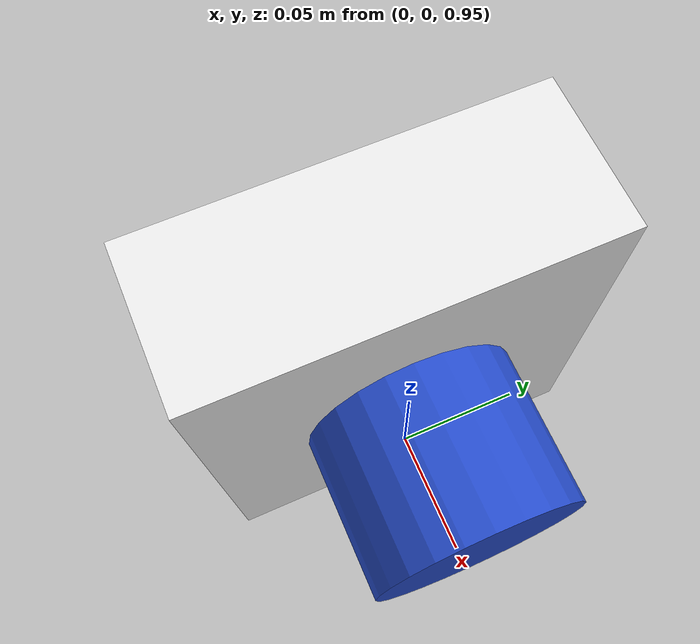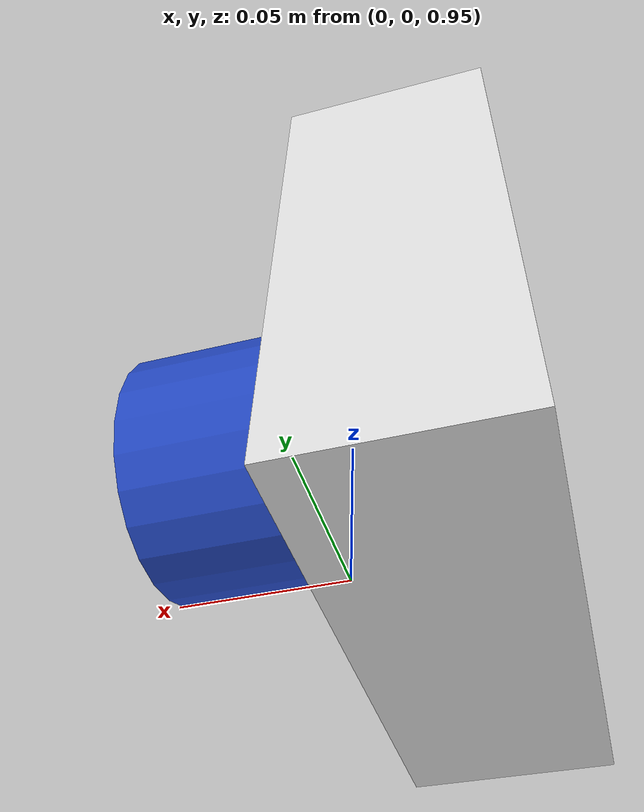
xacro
<?xml version="1.0"?>
<robot xmlns:xacro="http://www.ros.org/wiki/xacro"  name="robot">
    <xacro:include filename="include.xacro" />

    <link name="world"></link>

    <joint name="cam0_joint" type="fixed">
        <origin xyz="0 0 1" rpy="0 0 0"/>
        <parent link="world"/>
        <child link="cam0_link"/>
    </joint>

    <link name="cam0_link">
        <visual>
            <origin xyz="-0.03 0 0" rpy="0 0 0"/>
            <geometry>
                <box size="0.06 0.15 0.15" />
            </geometry>
            <material name="white" />
        </visual>
        <visual>
            <origin xyz="0.03 0 0" rpy="0 ${pi/2} 0"/>
            <geometry>
                <cylinder length="0.06" radius="0.04" />
            </geometry>
            <material name="blue" />
        </visual>
        <collision>
            <origin xyz="0.0 0 0" rpy="0 0 0"/>
            <geometry>
                <box size="0.12 0.15 0.15" />
            </geometry>
        </collision>
        <xacro:inertial_box mass="0.1" x="0.12" y="0.15" z="0.15">
            <origin xyz="0.0 0 0" rpy="0 0 0"/>
        </xacro:inertial_box>
    </link>

    <xacro:include filename="gazebo.xacro" />

</robot>

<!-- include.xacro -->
<robot xmlns:xacro="http://www.ros.org/wiki/xacro" >
    <xacro:macro name="inertial_sphere" params="mass radius *origin">
        <inertial>
            <xacro:insert_block name="origin"/>
            <mass value="${mass}" />
            <inertia ixx="${(2/5) * mass * (radius*radius)}" ixy="0.0" ixz="0.0"
                    iyy="${(2/5) * mass * (radius*radius)}" iyz="0.0"
                    izz="${(2/5) * mass * (radius*radius)}" />
        </inertial>
    </xacro:macro>

    <xacro:macro name="inertial_box" params="mass x y z *origin">
        <inertial>
            <xacro:insert_block name="origin"/>
            <mass value="${mass}" />
            <inertia ixx="${(1/12) * mass * (y*y+z*z)}" ixy="0.0" ixz="0.0"
                    iyy="${(1/12) * mass * (x*x+z*z)}" iyz="0.0"
                    izz="${(1/12) * mass * (x*x+y*y)}" />
        </inertial>
    </xacro:macro>

    <xacro:macro name="inertial_cylinder" params="mass length radius *origin">
        <inertial>
            <xacro:insert_block name="origin"/>
            <mass value="${mass}" />
            <inertia ixx="${(1/12) * mass * (3*radius*radius + length*length)}" ixy="0.0" ixz="0.0"
                    iyy="${(1/12) * mass * (3*radius*radius + length*length)}" iyz="0.0"
                    izz="${(1/2) * mass * (radius*radius)}" />
        </inertial>
    </xacro:macro>

</robot>

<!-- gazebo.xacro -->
<robot xmlns:xacro="http://www.ros.org/wiki/xacro">
    <gazebo reference="cam0_link">
        <material>Gazebo/Green</material>
    </gazebo>

    <joint name="camera_optical_joint" type="fixed">
        <origin xyz="0 0 0" rpy="-1.571 0 -1.571" />
        <parent link="cam0_link" />
        <child link="cam0_link_optical" />
    </joint>

    <link name="cam0_link_optical"></link>

    <gazebo reference="cam0_link">
        <sensor type="camera" name="cam0">
            <update_rate>30</update_rate>
            <visualize>true</visualize>
            <camera name="cam0">
                <horizontal_fov>1.3962634</horizontal_fov>
                <image>
                    <width>1280</width>
                    <height>720</height>
                    <format>BGR8</format>
                </image>
                <clip>
                    <near>0.02</near>
                    <far>300</far>
                </clip>
            </camera>
            <plugin name="camera_controller" filename="libgazebo_ros_camera.so">
                <frame_name>camera_link_optical</frame_name>
                <min_depth>0.1</min_depth>
                <max_depth>500</max_depth>
            </plugin>
        </sensor>
    </gazebo>

</robot>
